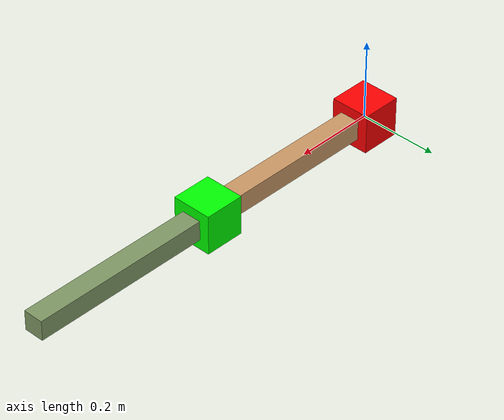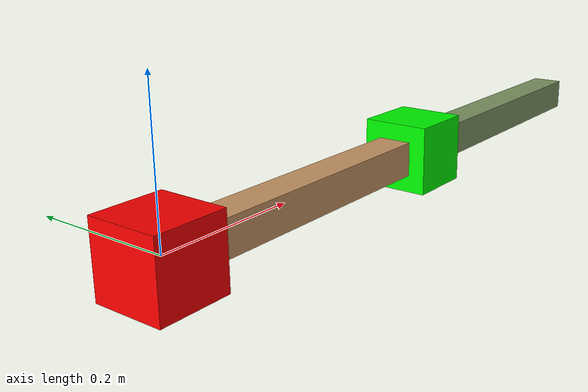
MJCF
<mujoco model="planer_2r">
    <compiler angle="radian" meshdir="assets" autolimits="true"/>
    <option integrator="implicitfast"/>

    <default>
        <default class="link">
            <geom type="capsule" size="0.05 0.25" rgba="0.8 0.6 0.4 1"/>
            </default>
    </default>

    <worldbody>
        <body name="base" pos="0 0 0">
            <geom type="box" size="0.05 0.05 0.05" rgba="1 0 0 1"/>

            <body name="link1" pos="0 0 0">
                <joint name="joint1" type="hinge" axis="0 0 1" range="-3.14 3.14"/>
                <geom type="box" size="0.025 0.025 0.25" pos="0.25 0 0" euler="0 1.57 0" rgba="0.8 0.6 0.4 1"/>

                <body name="joint_link12" pos="0.5 0 0">
                    <geom type="box" size="0.05 0.05 0.05" rgba="0 1 0 1"/>

                    <body name="link2" pos="0 0 0" euler="0 0 0">
                        <joint name="joint2" type="hinge" axis="0 0 1" range="-3.14 3.14"/>
                        <geom type="box" size="0.025 0.025 0.25" pos="0.25 0 0" euler="0 1.57 0" rgba="0.5 0.6 0.4 1"/>

                    </body>
                </body>
            </body>
        </body>
    </worldbody>

    <actuator>
        <general name="pos_actuator1" joint="joint1" ctrlrange="-3.14 3.14" ctrllimited="true"/>
        <general name="pos_actuator2" joint="joint2" ctrlrange="-3.14 3.14" ctrllimited="true"/>
    </actuator>

    <keyframe>
        <key name="home" qpos="0 1" ctrl="0 1"/>
    </keyframe>
</mujoco>
